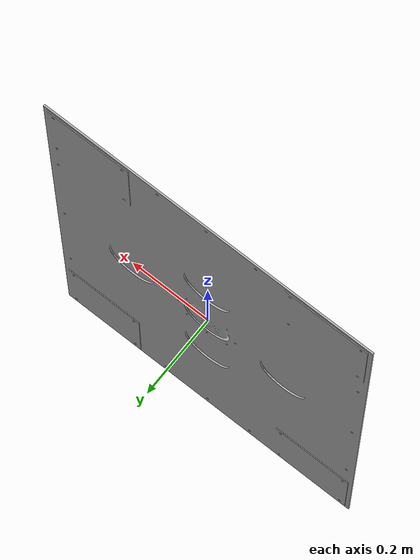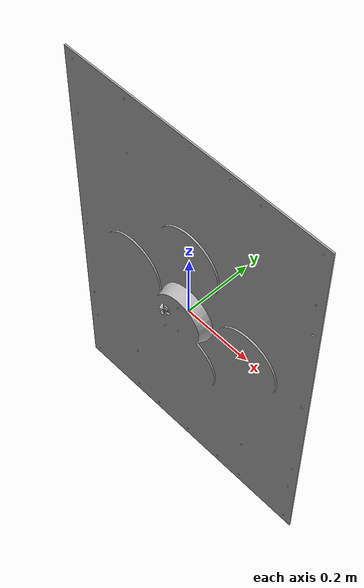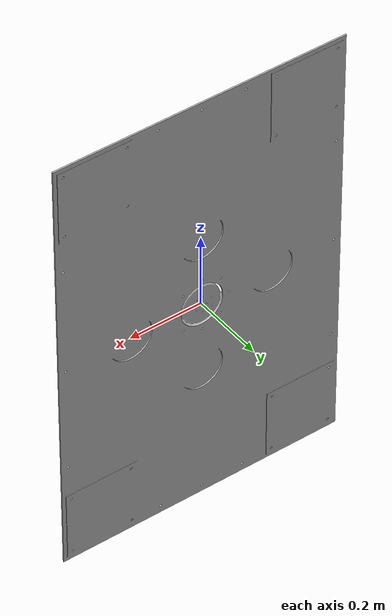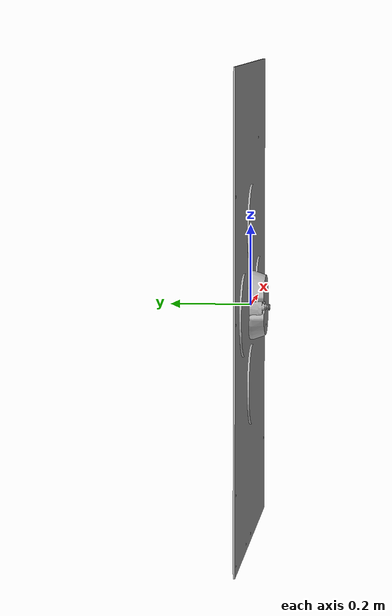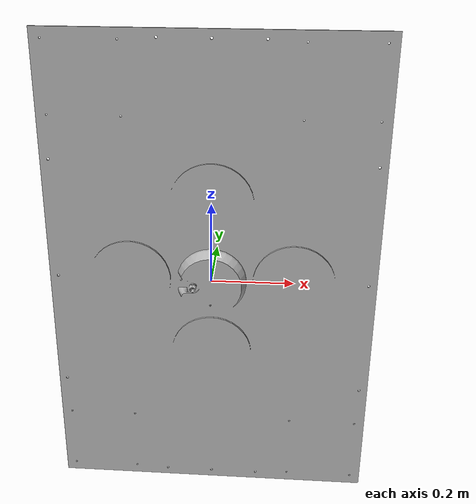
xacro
<?xml version="1.0" ?>
<robot name="DOCKING" xmlns:xacro="http://www.ros.org/wiki/xacro">

<xacro:include filename="$(find DOCKING_description)/urdf/materials.xacro" />
<xacro:include filename="$(find DOCKING_description)/urdf/DOCKING.trans" />
<xacro:include filename="$(find DOCKING_description)/urdf/DOCKING.gazebo" />
<link name="base_link">
  <inertial>
    <origin xyz="0.000393994165892423 0.14501829737064428 -4.0047432352055134e-09" rpy="0 0 0"/>
    <mass value="41.282267933635715"/>
    <inertia ixx="4.314511" iyy="6.225558" izz="1.916366" ixy="0.000281" iyz="0.0" ixz="0.0"/>
  </inertial>
  <visual>
    <origin xyz="0 0 0" rpy="0 0 0"/>
    <geometry>
      <mesh filename="package://DOCKING_description/meshes/base_link.stl" scale="0.001 0.001 0.001"/>
    </geometry>
    <material name="silver"/>
  </visual>
  <collision>
    <origin xyz="0 0 0" rpy="0 0 0"/>
    <geometry>
      <mesh filename="package://DOCKING_description/meshes/base_link.stl" scale="0.001 0.001 0.001"/>
    </geometry>
  </collision>
</link>

</robot>

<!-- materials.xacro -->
<robot name="DOCKING" xmlns:xacro="http://www.ros.org/wiki/xacro" >

<material name="silver">
  <color rgba="0.700 0.700 0.700 1.000"/>
</material>

</robot>

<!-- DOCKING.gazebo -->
<robot name="DOCKING" xmlns:xacro="http://www.ros.org/wiki/xacro" >

<xacro:property name="body_color" value="Gazebo/Silver" />

<gazebo>
  <plugin name="control" filename="libgazebo_ros_control.so"/>
</gazebo>
<gazebo reference="base_link">
  <material>${body_color}</material>
  <mu1>0.2</mu1>
  <mu2>0.2</mu2>
  <selfCollide>true</selfCollide>
  <gravity>true</gravity>
</gazebo>

</robot>
